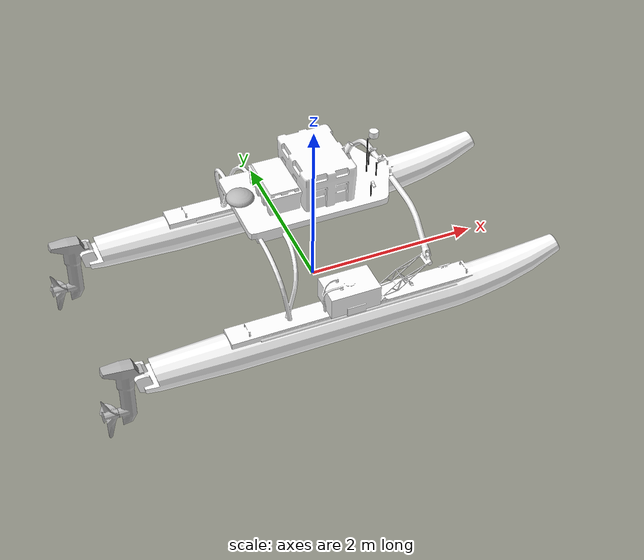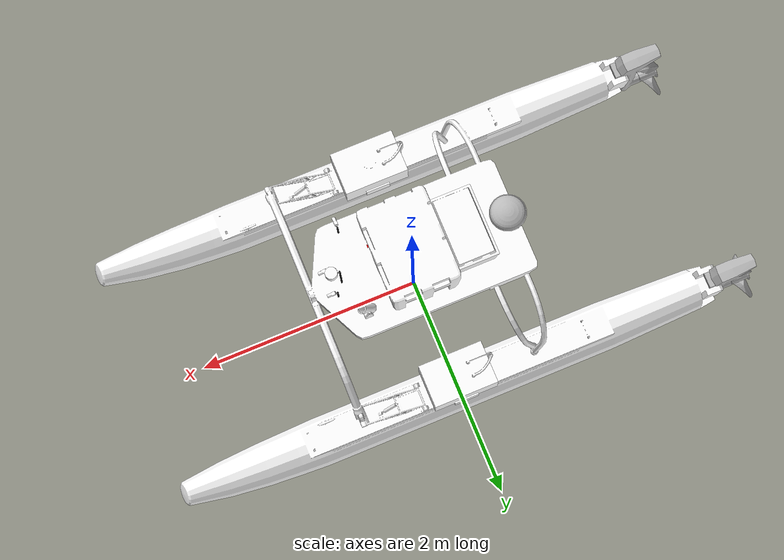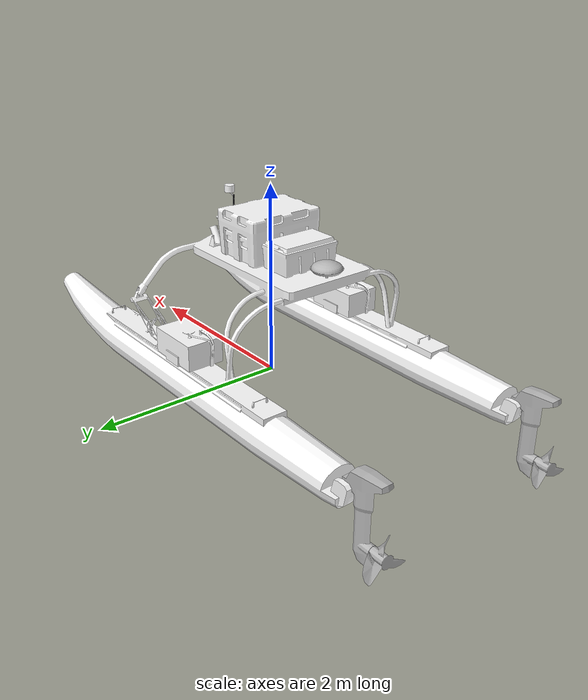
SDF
<sdf version="1.10">
 <model name="WAM-V">
  <link name="wamv/base_link">
   <inertial>
    <pose>-0.0035136061477780219 -0.00096544672795737289 0.25520552255993267 0 0 0</pose>
    <mass>250.18469999999999</mass>
    <inertia>
     <ixx>225.17117280344749</ixx>
     <ixy>0.1216186764289343</ixy>
     <ixz>0.99186607687258233</ixz>
     <iyy>454.14101743117533</iyy>
     <iyz>0.29216251726199038</iyz>
     <izz>499.75243467760379</izz>
    </inertia>
   </inertial>
   <collision name="wamv/base_link_fixed_joint_lump__left_float_collision">
    <pose>-0.40000000000000002 1.03 0.20000000000000001 0 1.5707963267948966 0</pose>
    <geometry><cylinder><length>4</length><radius>0.20000000000000001</radius></cylinder></geometry>
   </collision>
   <collision name="wamv/base_link_fixed_joint_lump__left_mid_float_collision_1">
    <pose>1.8500000000000001 1.03 0.29999999999999999 0 1.3799999999999997 0</pose>
    <geometry><cylinder><length>0.5</length><radius>0.17000000000000001</radius></cylinder></geometry>
   </collision>
   <collision name="wamv/base_link_fixed_joint_lump__left_front_float_collision_2">
    <pose>2.2999999999999998 1.03 0.40000000000000002 0 1.3 0</pose>
    <geometry><cylinder><length>0.45000000000000001</length><radius>0.12</radius></cylinder></geometry>
   </collision>
   <collision name="wamv/base_link_fixed_joint_lump__front_left_beam_lower_collision_3">
    <pose>0.90000000000000002 0.84999999999999998 1 0.78000000000000003 0 0</pose>
    <geometry><cylinder><length>0.5</length><radius>0.040000000000000001</radius></cylinder></geometry>
   </collision>
   <collision name="wamv/base_link_fixed_joint_lump__front_left_beam_upper_collision_4">
    <pose>0.90000000000000002 0.59999999999999998 1.1799999999999999 1.3500000000000001 0 0</pose>
    <geometry>
     <cylinder><length>0.20000000000000001</length><radius>0.040000000000000001</radius></cylinder>
    </geometry>
   </collision>
   <collision name="wamv/base_link_fixed_joint_lump__mid_left_beam_lower_collision_5">
    <pose>-0.65000000000000002 0.98999999999999999 0.69999999999999996 0.099999999999999978 0.25000000000000006 0</pose>
    <geometry>
     <cylinder><length>0.45000000000000001</length><radius>0.029999999999999999</radius></cylinder>
    </geometry>
   </collision>
   <collision name="wamv/base_link_fixed_joint_lump__mid_left_beam_medium_collision_6">
    <pose>-0.56999999999999995 0.87 1.05 0.75000000000000033 0.25000000000000017 0</pose>
    <geometry>
     <cylinder><length>0.32000000000000001</length><radius>0.029999999999999999</radius></cylinder>
    </geometry>
   </collision>
   <collision name="wamv/base_link_fixed_joint_lump__mid_left_beam_upper_collision_7">
    <pose>-0.55000000000000004 0.65000000000000002 1.1699999999999999 1.3500000000000001 0.25000000000000011 0</pose>
    <geometry>
     <cylinder><length>0.29999999999999999</length><radius>0.029999999999999999</radius></cylinder>
    </geometry>
   </collision>
   <collision name="wamv/base_link_fixed_joint_lump__rear_left_beam_lower_collision_8">
    <pose>-0.73999999999999999 1.03 0.69999999999999996 0 -0.14999999999999999 0</pose>
    <geometry>
     <cylinder><length>0.45000000000000001</length><radius>0.029999999999999999</radius></cylinder>
    </geometry>
   </collision>
   <collision name="wamv/base_link_fixed_joint_lump__rear_left_beam_medium_collision_9">
    <pose>-0.79000000000000004 0.91000000000000003 1.05 0.75000000000000022 -0.14999999999999999 -1.4035390109491176e-17</pose>
    <geometry>
     <cylinder><length>0.32000000000000001</length><radius>0.029999999999999999</radius></cylinder>
    </geometry>
   </collision>
   <collision name="wamv/base_link_fixed_joint_lump__rear_left_beam_upper_collision_10">
    <pose>-0.81000000000000005 0.67000000000000004 1.1799999999999999 1.45 -0.14999999999999999 0</pose>
    <geometry>
     <cylinder><length>0.29999999999999999</length><radius>0.029999999999999999</radius></cylinder>
    </geometry>
   </collision>
   <collision name="wamv/base_link_fixed_joint_lump__left_joint_collision_11">
    <pose>0.57999999999999996 1.03 0.59999999999999998 0 -0.59999999999999987 0</pose>
    <geometry><box><size>0.65000000000000002 0.20000000000000001 0.10000000000000001</size></box></geometry>
   </collision>
   <collision name="wamv/base_link_fixed_joint_lump__right_float_collision_12">
    <pose>-0.40000000000000002 -1.03 0.20000000000000001 0 1.5707963267948966 0</pose>
    <geometry><cylinder><length>4</length><radius>0.20000000000000001</radius></cylinder></geometry>
   </collision>
   <collision name="wamv/base_link_fixed_joint_lump__right_mid_float_collision_13">
    <pose>1.8500000000000001 -1.03 0.29999999999999999 0 1.3799999999999997 0</pose>
    <geometry><cylinder><length>0.5</length><radius>0.17000000000000001</radius></cylinder></geometry>
   </collision>
   <collision name="wamv/base_link_fixed_joint_lump__right_front_float_collision_14">
    <pose>2.2999999999999998 -1.03 0.40000000000000002 0 1.3 0</pose>
    <geometry><cylinder><length>0.45000000000000001</length><radius>0.12</radius></cylinder></geometry>
   </collision>
   <collision name="wamv/base_link_fixed_joint_lump__front_right_beam_lower_collision_15">
    <pose>0.90000000000000002 -0.84999999999999998 1 -0.78000000000000003 0 0</pose>
    <geometry><cylinder><length>0.5</length><radius>0.040000000000000001</radius></cylinder></geometry>
   </collision>
   <collision name="wamv/base_link_fixed_joint_lump__front_right_beam_upper_collision_16">
    <pose>0.90000000000000002 -0.59999999999999998 1.1799999999999999 -1.3500000000000001 0 0</pose>
    <geometry>
     <cylinder><length>0.20000000000000001</length><radius>0.040000000000000001</radius></cylinder>
    </geometry>
   </collision>
   <collision name="wamv/base_link_fixed_joint_lump__mid_right_beam_lower_collision_17">
    <pose>-0.65000000000000002 -0.98999999999999999 0.69999999999999996 -0.099999999999999978 0.25000000000000006 0</pose>
    <geometry>
     <cylinder><length>0.45000000000000001</length><radius>0.029999999999999999</radius></cylinder>
    </geometry>
   </collision>
   <collision name="wamv/base_link_fixed_joint_lump__mid_right_beam_medium_collision_18">
    <pose>-0.56999999999999995 -0.87 1.05 -0.75000000000000033 0.25000000000000017 0</pose>
    <geometry>
     <cylinder><length>0.32000000000000001</length><radius>0.029999999999999999</radius></cylinder>
    </geometry>
   </collision>
   <collision name="wamv/base_link_fixed_joint_lump__mid_right_beam_upper_collision_19">
    <pose>-0.55000000000000004 -0.65000000000000002 1.1699999999999999 -1.3500000000000001 0.25000000000000011 0</pose>
    <geometry>
     <cylinder><length>0.29999999999999999</length><radius>0.029999999999999999</radius></cylinder>
    </geometry>
   </collision>
   <collision name="wamv/base_link_fixed_joint_lump__rear_right_beam_lower_collision_20">
    <pose>-0.73999999999999999 -1.03 0.69999999999999996 0 -0.14999999999999999 0</pose>
    <geometry>
     <cylinder><length>0.45000000000000001</length><radius>0.029999999999999999</radius></cylinder>
    </geometry>
   </collision>
   <collision name="wamv/base_link_fixed_joint_lump__rear_right_beam_medium_collision_21">
    <pose>-0.79000000000000004 -0.91000000000000003 1.05 -0.75000000000000022 -0.14999999999999999 1.4035390109491176e-17</pose>
    <geometry>
     <cylinder><length>0.32000000000000001</length><radius>0.029999999999999999</radius></cylinder>
    </geometry>
   </collision>
   <collision name="wamv/base_link_fixed_joint_lump__rear_right_beam_upper_collision_22">
    <pose>-0.81000000000000005 -0.67000000000000004 1.1799999999999999 -1.45 -0.14999999999999999 0</pose>
    <geometry>
     <cylinder><length>0.29999999999999999</length><radius>0.029999999999999999</radius></cylinder>
    </geometry>
   </collision>
   <collision name="wamv/base_link_fixed_joint_lump__right_joint_collision_23">
    <pose>0.57999999999999996 -1.03 0.59999999999999998 0 -0.59999999999999987 0</pose>
    <geometry><box><size>0.65000000000000002 0.20000000000000001 0.10000000000000001</size></box></geometry>
   </collision>
   <collision name="wamv/base_link_fixed_joint_lump__top_base_collision_24">
    <pose>0 0 1.25 0 0 0</pose>
    <geometry><box><size>1.8500000000000001 1 0.10000000000000001</size></box></geometry>
   </collision>
   <collision name="wamv/base_link_fixed_joint_lump__front_left_camera_post_collision_collision_25">
    <pose>0.69999999999999996 0.10000000000000001 1.3847499999999999 0 0 0</pose>
    <geometry><cylinder><length>0.17649999999999999</length><radius>0.0076</radius></cylinder></geometry>
   </collision>
   <collision name="wamv/base_link_fixed_joint_lump__front_left_camera_post_arm_collision_collision_26">
    <pose>0.72999999999999998 0.10000000000000001 1.4730000000000001 -1.2042771838760871 5.5511151231257827e-17 -1.570796326794897</pose>
    <geometry>
     <cylinder><length>0.065000000000000002</length><radius>0.0080000000000000002</radius></cylinder>
    </geometry>
   </collision>
   <collision name="wamv/base_link_fixed_joint_lump__front_left_camera_lens_collision_collision_27">
    <pose>0.76738666487320317 0.10000000000000001 1.495341257188155 3.1415926535897931 1.3089969389957472 3.1415926535897931</pose>
    <geometry>
     <cylinder><length>0.042000000000000003</length><radius>0.014999999999999999</radius></cylinder>
    </geometry>
   </collision>
   <collision name="wamv/base_link_fixed_joint_lump__front_left_camera_box_collision_collision_28">
    <pose>0.73019852056107404 0.10000000000000001 1.5053057904246021 0 0.26179938779914941 0</pose>
    <geometry><box><size>0.035999999999999997 0.029999999999999999 0.029999999999999999</size></box></geometry>
   </collision>
   <collision name="wamv/base_link_fixed_joint_lump__front_right_camera_post_collision_collision_29">
    <pose>0.69999999999999996 -0.10000000000000001 1.3847499999999999 0 0 0</pose>
    <geometry><cylinder><length>0.17649999999999999</length><radius>0.0076</radius></cylinder></geometry>
   </collision>
   <collision name="wamv/base_link_fixed_joint_lump__front_right_camera_post_arm_collision_collision_30">
    <pose>0.72999999999999998 -0.10000000000000001 1.4730000000000001 -1.2042771838760871 5.5511151231257827e-17 -1.570796326794897</pose>
    <geometry>
     <cylinder><length>0.065000000000000002</length><radius>0.0080000000000000002</radius></cylinder>
    </geometry>
   </collision>
   <collision name="wamv/base_link_fixed_joint_lump__front_right_camera_lens_collision_collision_31">
    <pose>0.76738666487320317 -0.10000000000000001 1.495341257188155 3.1415926535897931 1.3089969389957472 3.1415926535897931</pose>
    <geometry>
     <cylinder><length>0.042000000000000003</length><radius>0.014999999999999999</radius></cylinder>
    </geometry>
   </collision>
   <collision name="wamv/base_link_fixed_joint_lump__front_right_camera_box_collision_collision_32">
    <pose>0.73019852056107404 -0.10000000000000001 1.5053057904246021 0 0.26179938779914941 0</pose>
    <geometry><box><size>0.035999999999999997 0.029999999999999999 0.029999999999999999</size></box></geometry>
   </collision>
   <collision name="wamv/base_link_fixed_joint_lump__lidar_wamv_post_collision_collision_33">
    <pose>0.62999999999999989 0 1.52325 0 0 0</pose>
    <geometry><cylinder><length>0.45350000000000013</length><radius>0.0076</radius></cylinder></geometry>
   </collision>
   <collision name="wamv/base_link_fixed_joint_lump__lidar_wamv_post_arm_collision_collision_34">
    <pose>0.65999999999999992 0 1.75 -1.2042771838760871 5.5511151231257827e-17 -1.570796326794897</pose>
    <geometry>
     <cylinder><length>0.065000000000000002</length><radius>0.0080000000000000002</radius></cylinder>
    </geometry>
   </collision>
   <collision name="wamv/base_link_fixed_joint_lump__lidar_wamv_collision_collision_35">
    <pose>0.69999999999999996 0 1.8 0 0 0</pose>
    <geometry><cylinder><length>0.074999999999999997</length><radius>0.055</radius></cylinder></geometry>
   </collision>
   <collision name="wamv/base_link_fixed_joint_lump__middle_right_camera_post_collision_collision_36">
    <pose>0.5 -0.40000000000000002 1.3847499999999999 0 0 -1.5707963267948959</pose>
    <geometry><cylinder><length>0.17649999999999999</length><radius>0.0076</radius></cylinder></geometry>
   </collision>
   <collision name="wamv/base_link_fixed_joint_lump__middle_right_camera_post_arm_collision_collision_37">
    <pose>0.5 -0.42999999999999999 1.4730000000000001 -1.2042771838760871 -5.7225324855899147e-17 -3.1415926535897931</pose>
    <geometry>
     <cylinder><length>0.065000000000000002</length><radius>0.0080000000000000002</radius></cylinder>
    </geometry>
   </collision>
   <collision name="wamv/base_link_fixed_joint_lump__middle_right_camera_lens_collision_collision_38">
    <pose>0.5 -0.46738666487320318 1.495341257188155 3.1415926535897927 1.3089969389957481 1.5707963267948959</pose>
    <geometry>
     <cylinder><length>0.042000000000000003</length><radius>0.014999999999999999</radius></cylinder>
    </geometry>
   </collision>
   <collision name="wamv/base_link_fixed_joint_lump__middle_right_camera_box_collision_collision_39">
    <pose>0.5 -0.4301985205610741 1.5053057904246021 0 0.26179938779914946 -1.570796326794897</pose>
    <geometry><box><size>0.035999999999999997 0.029999999999999999 0.029999999999999999</size></box></geometry>
   </collision>
   <collision name="wamv/base_link_fixed_joint_lump__cpu_case_1_collision_collision_40">
    <pose>0.035000000000000003 0 1.53 0 0 0</pose>
    <geometry><box><size>0.59499999999999997 0.82999999999999996 0.46999999999999997</size></box></geometry>
   </collision>
   <collision name="wamv/base_link_fixed_joint_lump__cpu_case_2_collision_collision_41">
    <pose>-0.45000000000000001 0 1.4379999999999999 0 0 0</pose>
    <geometry><box><size>0.375 0.64000000000000001 0.28000000000000003</size></box></geometry>
   </collision>
   <collision name="wamv/base_link_fixed_joint_lump__left_battery_collision_collision_42">
    <pose>0 1 0.59999999999999998 0 0 0</pose>
    <geometry><box><size>0.59999999999999998 0.40000000000000002 0.31</size></box></geometry>
   </collision>
   <collision name="wamv/base_link_fixed_joint_lump__right_battery_collision_collision_43">
    <pose>0 -1 0.59999999999999998 0 0 0</pose>
    <geometry><box><size>0.59999999999999998 0.40000000000000002 0.31</size></box></geometry>
   </collision>
   <visual name="wamv/base_link_visual">
    <geometry>
     <mesh><scale>1 1 1</scale><uri>model://wamv_description/models/WAM-V-Base/mesh/WAM-V-Base.dae</uri></mesh>
    </geometry>
    <material>
     <diffuse>1 1 1 1</diffuse>
     <specular>1 1 1 1</specular>
     <pbr>
      <metal>
       <albedo_map>model://wamv_description/models/WAM-V-Base/mesh/WAM-V_Albedo.png</albedo_map>
       <normal_map>model://wamv_description/models/WAM-V-Base/mesh/WAM-V_Normal.png</normal_map>
       <roughness_map>model://wamv_description/models/WAM-V-Base/mesh/WAM-V_Roughness.png</roughness_map>
       <metalness_map>model://wamv_description/models/WAM-V-Base/mesh/WAM-V_Metalness.png</metalness_map>
      </metal>
     </pbr>
    </material>
   </visual>
   <visual name="wamv/base_link_fixed_joint_lump__wamv/front_left_camera_post_link_visual_1">
    <pose>0.69999999999999996 0.10000000000000001 1.3847499999999999 0 0 0</pose>
    <geometry><cylinder><length>0.17649999999999999</length><radius>0.0076</radius></cylinder></geometry>
    <material><diffuse>0 0 0 1</diffuse><ambient>0 0 0 1</ambient></material>
   </visual>
   <visual name="wamv/base_link_fixed_joint_lump__front_left_camera_post_arm_visual_visual_2">
    <pose>0.69199999999999995 0.10000000000000001 1.47 -1.0471975511965981 5.5511151231257827e-17 -1.570796326794897</pose>
    <geometry>
     <mesh><scale>1 1 1</scale><uri>model://vrx_gazebo/models/sensor_post/mesh/sensor_post_arm.dae</uri></mesh>
    </geometry>
   </visual>
   <visual name="wamv/base_link_fixed_joint_lump__wamv/front_left_camera_link_visual_3">
    <pose>0.71812444773246065 0.10000000000000001 1.5085410284883829 0.26179938779914941 2.7755575615628914e-17 1.570796326794897</pose>
    <geometry>
     <mesh><scale>1 1 1</scale><uri>model://vrx_gazebo/models/mono_camera/mesh/mono_camera.dae</uri></mesh>
    </geometry>
    <material>
     <diffuse>1 1 1 1</diffuse>
     <specular>1 1 1 1</specular>
     <pbr>
      <metal>
       <albedo_map>model://vrx_gazebo/models/mono_camera/mesh/mono_camera_Albedo.png</albedo_map>
       <normal_map>model://vrx_gazebo/models/mono_camera/mesh/mono_camera_Normal.png</normal_map>
       <roughness_map>model://vrx_gazebo/models/mono_camera/mesh/mono_camera_Roughness.png</roughness_map>
       <metalness_map>model://vrx_gazebo/models/mono_camera/mesh/mono_camera_Metalness.png</metalness_map>
      </metal>
     </pbr>
    </material>
   </visual>
   <visual name="wamv/base_link_fixed_joint_lump__wamv/front_right_camera_post_link_visual_4">
    <pose>0.69999999999999996 -0.10000000000000001 1.3847499999999999 0 0 0</pose>
    <geometry><cylinder><length>0.17649999999999999</length><radius>0.0076</radius></cylinder></geometry>
    <material><diffuse>0 0 0 1</diffuse><ambient>0 0 0 1</ambient></material>
   </visual>
   <visual name="wamv/base_link_fixed_joint_lump__front_right_camera_post_arm_visual_visual_5">
    <pose>0.69199999999999995 -0.10000000000000001 1.47 -1.0471975511965981 5.5511151231257827e-17 -1.570796326794897</pose>
    <geometry>
     <mesh><scale>1 1 1</scale><uri>model://vrx_gazebo/models/sensor_post/mesh/sensor_post_arm.dae</uri></mesh>
    </geometry>
   </visual>
   <visual name="wamv/base_link_fixed_joint_lump__wamv/front_right_camera_link_visual_6">
    <pose>0.71812444773246065 -0.10000000000000001 1.5085410284883829 0.26179938779914941 2.7755575615628914e-17 1.570796326794897</pose>
    <geometry>
     <mesh><scale>1 1 1</scale><uri>model://vrx_gazebo/models/mono_camera/mesh/mono_camera.dae</uri></mesh>
    </geometry>
    <material>
     <diffuse>1 1 1 1</diffuse>
     <specular>1 1 1 1</specular>
     <pbr>
      <metal>
       <albedo_map>model://vrx_gazebo/models/mono_camera/mesh/mono_camera_Albedo.png</albedo_map>
       <normal_map>model://vrx_gazebo/models/mono_camera/mesh/mono_camera_Normal.png</normal_map>
       <roughness_map>model://vrx_gazebo/models/mono_camera/mesh/mono_camera_Roughness.png</roughness_map>
       <metalness_map>model://vrx_gazebo/models/mono_camera/mesh/mono_camera_Metalness.png</metalness_map>
      </metal>
     </pbr>
    </material>
   </visual>
   <visual name="wamv/base_link_fixed_joint_lump__wamv/lidar_wamv_post_link_visual_7">
    <pose>0.62999999999999989 0 1.52325 0 0 0</pose>
    <geometry><cylinder><length>0.45350000000000013</length><radius>0.0076</radius></cylinder></geometry>
    <material><diffuse>0 0 0 1</diffuse><ambient>0 0 0 1</ambient></material>
   </visual>
   <visual name="wamv/base_link_fixed_joint_lump__lidar_wamv_post_arm_visual_visual_8">
    <pose>0.62199999999999989 0 1.7470000000000001 -1.0471975511965981 5.5511151231257827e-17 -1.570796326794897</pose>
    <geometry>
     <mesh><scale>1 1 1</scale><uri>model://vrx_gazebo/models/sensor_post/mesh/sensor_post_arm.dae</uri></mesh>
    </geometry>
   </visual>
   <visual name="wamv/base_link_fixed_joint_lump__wamv/lidar_wamv_link_visual_9">
    <pose>0.69999999999999996 0 1.7649999999999999 0 0 0</pose>
    <geometry>
     <mesh><scale>1 1 1</scale><uri>model://vrx_gazebo/models/3d_lidar/mesh/3d_lidar.dae</uri></mesh>
    </geometry>
    <material>
     <diffuse>1 1 1 1</diffuse>
     <specular>1 1 1 1</specular>
     <pbr>
      <metal>
       <albedo_map>model://vrx_gazebo/models/3d_lidar/mesh/3d_Lidar_Albedo.png</albedo_map>
       <normal_map>model://vrx_gazebo/models/3d_lidar/mesh/3d_Lidar_Normal.png</normal_map>
       <roughness_map>model://vrx_gazebo/models/3d_lidar/mesh/3d_Lidar_Roughness.png</roughness_map>
       <metalness_map>model://vrx_gazebo/models/3d_lidar/mesh/3d_Lidar_Metalness.png</metalness_map>
      </metal>
     </pbr>
    </material>
   </visual>
   <visual name="wamv/base_link_fixed_joint_lump__wamv/middle_right_camera_post_link_visual_10">
    <pose>0.5 -0.40000000000000002 1.3847499999999999 0 0 -1.5707963267948959</pose>
    <geometry><cylinder><length>0.17649999999999999</length><radius>0.0076</radius></cylinder></geometry>
    <material><diffuse>0 0 0 1</diffuse><ambient>0 0 0 1</ambient></material>
   </visual>
   <visual name="wamv/base_link_fixed_joint_lump__middle_right_camera_post_arm_visual_visual_11">
    <pose>0.5 -0.39200000000000002 1.47 -1.0471975511965981 2.2311252215006139e-17 -3.1415926535897931</pose>
    <geometry>
     <mesh><scale>1 1 1</scale><uri>model://vrx_gazebo/models/sensor_post/mesh/sensor_post_arm.dae</uri></mesh>
    </geometry>
   </visual>
   <visual name="wamv/base_link_fixed_joint_lump__wamv/middle_right_camera_link_visual_12">
    <pose>0.5 -0.41812444773246082 1.5085410284883829 0.26179938779914952 5.5036245637175027e-17 7.2456591959675132e-18</pose>
    <geometry>
     <mesh><scale>1 1 1</scale><uri>model://vrx_gazebo/models/mono_camera/mesh/mono_camera.dae</uri></mesh>
    </geometry>
    <material>
     <diffuse>1 1 1 1</diffuse>
     <specular>1 1 1 1</specular>
     <pbr>
      <metal>
       <albedo_map>model://vrx_gazebo/models/mono_camera/mesh/mono_camera_Albedo.png</albedo_map>
       <normal_map>model://vrx_gazebo/models/mono_camera/mesh/mono_camera_Normal.png</normal_map>
       <roughness_map>model://vrx_gazebo/models/mono_camera/mesh/mono_camera_Roughness.png</roughness_map>
       <metalness_map>model://vrx_gazebo/models/mono_camera/mesh/mono_camera_Metalness.png</metalness_map>
      </metal>
     </pbr>
    </material>
   </visual>
   <visual name="wamv/base_link_fixed_joint_lump__wamv/cpu_cases_link_visual_13">
    <pose>-0.076999999999999999 0 0 0 0 0</pose>
    <geometry>
     <mesh><scale>1 1 1</scale><uri>model://vrx_gazebo/models/cpu_cases/mesh/cpu_cases.dae</uri></mesh>
    </geometry>
    <material>
     <diffuse>1 1 1 1</diffuse>
     <specular>1 1 1 1</specular>
     <pbr>
      <metal>
       <albedo_map>model://vrx_gazebo/models/cpu_cases/mesh/cpu_cases_Albedo.png</albedo_map>
       <normal_map>model://vrx_gazebo/models/cpu_cases/mesh/cpu_cases_Normal.png</normal_map>
       <roughness_map>model://vrx_gazebo/models/cpu_cases/mesh/cpu_cases_Roughness.png</roughness_map>
       <metalness_map>model://vrx_gazebo/models/cpu_cases/mesh/cpu_cases_Metalness.png</metalness_map>
      </metal>
     </pbr>
    </material>
   </visual>
   <visual name="wamv/base_link_fixed_joint_lump__wamv/left_battery_link_visual_14">
    <pose>0 -0.03000000000000003 0 0 0 0</pose>
    <geometry>
     <mesh><scale>1 1 1</scale><uri>model://vrx_gazebo/models/battery/mesh/battery.dae</uri></mesh>
    </geometry>
    <material>
     <diffuse>1 1 1 1</diffuse>
     <specular>1 1 1 1</specular>
     <pbr>
      <metal>
       <albedo_map>model://vrx_gazebo/models/battery/mesh/battery_Albedo.png</albedo_map>
       <normal_map>model://vrx_gazebo/models/battery/mesh/battery_Normal.png</normal_map>
       <roughness_map>model://vrx_gazebo/models/battery/mesh/battery_Roughness.png</roughness_map>
       <metalness_map>model://vrx_gazebo/models/battery/mesh/battery_Metalness.png</metalness_map>
      </metal>
     </pbr>
    </material>
   </visual>
   <visual name="wamv/base_link_fixed_joint_lump__wamv/right_battery_link_visual_15">
    <pose>0 -2.0299999999999998 0 0 0 0</pose>
    <geometry>
     <mesh><scale>1 1 1</scale><uri>model://vrx_gazebo/models/battery/mesh/battery.dae</uri></mesh>
    </geometry>
    <material>
     <diffuse>1 1 1 1</diffuse>
     <specular>1 1 1 1</specular>
     <pbr>
      <metal>
       <albedo_map>model://vrx_gazebo/models/battery/mesh/battery_Albedo.png</albedo_map>
       <normal_map>model://vrx_gazebo/models/battery/mesh/battery_Normal.png</normal_map>
       <roughness_map>model://vrx_gazebo/models/battery/mesh/battery_Roughness.png</roughness_map>
       <metalness_map>model://vrx_gazebo/models/battery/mesh/battery_Metalness.png</metalness_map>
      </metal>
     </pbr>
    </material>
   </visual>
   <sensor name="contact_sensor" type="contact">
    <contact>
     <collision>wamv/base_link_fixed_joint_lump__top_base_collision_24</collision>
     <collision>wamv/base_link_fixed_joint_lump__left_float_collision</collision>
     <collision>wamv/base_link_fixed_joint_lump__left_mid_float_collision_1</collision>
     <collision>wamv/base_link_fixed_joint_lump__left_front_float_collision_2</collision>
     <collision>wamv/base_link_fixed_joint_lump__right_float_collision_12</collision>
     <collision>wamv/base_link_fixed_joint_lump__right_mid_float_collision_13</collision>
     <collision>wamv/base_link_fixed_joint_lump__right_front_float_collision_14</collision>
     <topic>/vrx/contacts</topic>
    </contact>
    <always_on>true</always_on>
    <update_rate>5</update_rate>
   </sensor>
   <sensor name="front_left_camera_sensor" type="camera">
    <update_rate>30</update_rate>
    <camera name="front_left_camera_camera">
     <horizontal_fov>1.3962634</horizontal_fov>
     <image><width>1280</width><height>720</height><format>R8G8B8</format></image>
     <clip><near>0.050000000000000003</near><far>400</far></clip>
     <noise><type>gaussian</type><mean>0</mean><stddev>0.0070000000000000001</stddev></noise>
    </camera>
    <pose>0.75 0.10000000000000001 1.5 0 0.261799 0</pose>
   </sensor>
   <sensor name="front_right_camera_sensor" type="camera">
    <update_rate>30</update_rate>
    <camera name="front_right_camera_camera">
     <horizontal_fov>1.3962634</horizontal_fov>
     <image><width>1280</width><height>720</height><format>R8G8B8</format></image>
     <clip><near>0.050000000000000003</near><far>400</far></clip>
     <noise><type>gaussian</type><mean>0</mean><stddev>0.0070000000000000001</stddev></noise>
    </camera>
    <pose>0.75 -0.10000000000000001 1.5 0 0.261799 0</pose>
   </sensor>
   <sensor name="lidar_wamv_sensor" type="gpu_ray">
    <update_rate>10</update_rate>
    <ray>
     <scan>
      <horizontal>
       <samples>1875</samples>
       <resolution>1</resolution>
       <min_angle>-3.1415926535897931</min_angle>
       <max_angle>3.1415926535897931</max_angle>
      </horizontal>
      <vertical>
       <samples>16</samples>
       <resolution>1</resolution>
       <min_angle>-0.26179938779914941</min_angle>
       <max_angle>0.26179938779914941</max_angle>
      </vertical>
     </scan>
     <range><min>0.10000000000000001</min><max>130</max></range>
     <noise><type>gaussian</type><mean>0</mean><stddev>0.01</stddev></noise>
    </ray>
    <pose>0.69999999999999996 0 1.8 0 0 0</pose>
   </sensor>
   <sensor name="middle_right_camera_sensor" type="camera">
    <update_rate>30</update_rate>
    <camera name="middle_right_camera_camera">
     <horizontal_fov>1.3962634</horizontal_fov>
     <image><width>1280</width><height>720</height><format>R8G8B8</format></image>
     <clip><near>0.050000000000000003</near><far>400</far></clip>
     <noise><type>gaussian</type><mean>0</mean><stddev>0.0070000000000000001</stddev></noise>
    </camera>
    <pose>0.5 -0.45000000000000001 1.5 -2.873468332259928e-17 0.261799 -1.5708</pose>
   </sensor>
  </link>
  <joint name="wamv/ball_shooter_base_joint" type="revolute">
   <pose relative_to="wamv/base_link">0.54000000000000004 0.29999999999999999 1.296 0 0 0</pose>
   <parent>wamv/base_link</parent>
   <child>wamv/ball_shooter_base_link</child>
   <axis>
    <xyz>0 0 1</xyz>
    <limit><lower>0</lower><upper>0</upper><effort>1000</effort><velocity>0</velocity></limit>
    <dynamics><spring_reference>0</spring_reference><spring_stiffness>0</spring_stiffness></dynamics>
   </axis>
  </joint>
  <link name="wamv/ball_shooter_base_link">
   <pose relative_to="wamv/ball_shooter_base_joint">0 0 0 0 0 0</pose>
   <inertial>
    <pose>-0.02 0 0.050000000000000003 0 0 0</pose>
    <mass>0.5</mass>
    <inertia>
     <ixx>0.00083000000000000001</ixx>
     <ixy>0</ixy>
     <ixz>0</ixz>
     <iyy>0.00052083000000000001</iyy>
     <iyz>0</iyz>
     <izz>0.00052083000000000001</izz>
    </inertia>
   </inertial>
   <visual name="wamv/ball_shooter_base_link_visual">
    <geometry>
     <mesh>
      <scale>1 1 1</scale>
      <uri>model://vrx_gazebo/models/ball_shooter/meshes/ball_shooter_base.dae</uri>
     </mesh>
    </geometry>
    <material>
     <diffuse>1 1 1 1</diffuse>
     <specular>1 1 1 1</specular>
     <pbr>
      <metal>
       <albedo_map>model://vrx_gazebo/models/ball_shooter/materials/Textures/Launcher_Albedo.png</albedo_map>
       <normal_map>model://vrx_gazebo/models/ball_shooter/materials/Textures/Launcher_Normal.png</normal_map>
       <roughness_map>model://vrx_gazebo/models/ball_shooter/materials/Textures/Launcher_Roughness.png</roughness_map>
       <metalness_map>model://vrx_gazebo/models/ball_shooter/materials/Textures/Launcher_Metalness.png</metalness_map>
      </metal>
     </pbr>
    </material>
   </visual>
  </link>
  <joint name="wamv/ball_shooter_launcher_joint" type="revolute">
   <pose relative_to="wamv/ball_shooter_base_link">-0.020400000000000001 0 0.107877 0 -1.04 0</pose>
   <parent>wamv/ball_shooter_base_link</parent>
   <child>wamv/ball_shooter_launcher_link</child>
   <axis>
    <xyz>0 0 1</xyz>
    <limit><lower>0</lower><upper>0</upper><effort>1000</effort><velocity>0</velocity></limit>
    <dynamics><spring_reference>0</spring_reference><spring_stiffness>0</spring_stiffness></dynamics>
   </axis>
  </joint>
  <link name="wamv/ball_shooter_launcher_link">
   <pose relative_to="wamv/ball_shooter_launcher_joint">0 0 0 0 0 0</pose>
   <inertial>
    <pose>0 0 0 3.1415926535897931 -1.5707926536359933 3.1415926535897931</pose>
    <mass>0.5</mass>
    <inertia>
     <ixx>0.0017791669999999999</ixx>
     <ixy>0</ixy>
     <ixz>0</ixz>
     <iyy>0.0017791669999999999</iyy>
     <iyz>0</iyz>
     <izz>0.00022499999999999999</izz>
    </inertia>
   </inertial>
   <collision name="wamv/ball_shooter_launcher_link_fixed_joint_lump__ball_shooter_collision_collision">
    <pose>0 0 0 0 0.261799 0</pose>
    <geometry><box><size>0.29999999999999999 0.29999999999999999 0.20000000000000001</size></box></geometry>
   </collision>
   <visual name="wamv/ball_shooter_launcher_link_visual">
    <pose>0 0 0 0 0.261799 0</pose>
    <geometry>
     <mesh>
      <scale>1 1 1</scale>
      <uri>model://vrx_gazebo/models/ball_shooter/meshes/ball_shooter_launcher.dae</uri>
     </mesh>
    </geometry>
    <material>
     <diffuse>1 1 1 1</diffuse>
     <specular>1 1 1 1</specular>
     <pbr>
      <metal>
       <albedo_map>model://vrx_gazebo/models/ball_shooter/materials/Textures/Launcher_Albedo.png</albedo_map>
       <normal_map>model://vrx_gazebo/models/ball_shooter/materials/Textures/Launcher_Normal.png</normal_map>
       <roughness_map>model://vrx_gazebo/models/ball_shooter/materials/Textures/Launcher_Roughness.png</roughness_map>
       <metalness_map>model://vrx_gazebo/models/ball_shooter/materials/Textures/Launcher_Metalness.png</metalness_map>
      </metal>
     </pbr>
    </material>
   </visual>
  </link>
  <joint name="wamv/gps_wamv_joint" type="revolute">
   <pose relative_to="wamv/base_link">-0.84999999999999998 0 1.3 0 0 0</pose>
   <parent>wamv/base_link</parent>
   <child>wamv/gps_wamv_link</child>
   <axis>
    <xyz>0 0 1</xyz>
    <limit><lower>0</lower><upper>0</upper><effort>1000</effort><velocity>0</velocity></limit>
    <dynamics><spring_reference>0</spring_reference><spring_stiffness>0</spring_stiffness></dynamics>
   </axis>
  </joint>
  <link name="wamv/gps_wamv_link">
   <pose relative_to="wamv/gps_wamv_joint">0 0 0 0 0 0</pose>
   <inertial>
    <mass>1</mass>
    <inertia>
     <ixx>0.0064580000000000002</ixx>
     <ixy>0</ixy>
     <ixz>0</ixz>
     <iyy>0.0064580000000000002</iyy>
     <iyz>0</iyz>
     <izz>0.01125</izz>
    </inertia>
   </inertial>
   <collision name="wamv/gps_wamv_link_fixed_joint_lump__gps_wamv_collision_base_collision">
    <pose>0 0 0.025000000000000001 0 0 0</pose>
    <geometry>
     <cylinder><length>0.050000000000000003</length><radius>0.014999999999999999</radius></cylinder>
    </geometry>
   </collision>
   <collision name="wamv/gps_wamv_link_fixed_joint_lump__gps_wamv_collision_antenna_collision_1">
    <pose>0 0 0.11 0 0 0</pose>
    <geometry>
     <cylinder><length>0.10000000000000001</length><radius>0.14999999999999999</radius></cylinder>
    </geometry>
   </collision>
   <visual name="wamv/gps_wamv_link_fixed_joint_lump__gps_wamv_visual_visual">
    <geometry><mesh><scale>1 1 1</scale><uri>model://wamv_gazebo/models/gps/mesh/gps.dae</uri></mesh></geometry>
   </visual>
   <sensor name="navsat" type="navsat"><always_on>true</always_on><update_rate>20</update_rate></sensor>
  </link>
  <joint name="wamv/imu_wamv_joint" type="revolute">
   <pose relative_to="wamv/base_link">0.29999999999999999 -0.20000000000000001 1.3 0 0 0</pose>
   <parent>wamv/base_link</parent>
   <child>wamv/imu_wamv_link</child>
   <axis>
    <xyz>0 0 1</xyz>
    <limit><lower>0</lower><upper>0</upper><effort>1000</effort><velocity>0</velocity></limit>
    <dynamics><spring_reference>0</spring_reference><spring_stiffness>0</spring_stiffness></dynamics>
   </axis>
  </joint>
  <link name="wamv/imu_wamv_link">
   <pose relative_to="wamv/imu_wamv_joint">0 0 0 0 0 0</pose>
   <inertial>
    <mass>0.10000000000000001</mass>
    <inertia>
     <ixx>5.4199999999999998e-06</ixx>
     <ixy>0</ixy>
     <ixz>0</ixz>
     <iyy>2.1039999999999998e-05</iyy>
     <iyz>0</iyz>
     <izz>2.6040000000000001e-05</izz>
    </inertia>
   </inertial>
   <collision name="wamv/imu_wamv_link_fixed_joint_lump__imu_wamv_collision_collision">
    <geometry><box><size>0.050000000000000003 0.025000000000000001 0.0050000000000000001</size></box></geometry>
   </collision>
   <visual name="wamv/imu_wamv_link_fixed_joint_lump__imu_wamv_visual_visual">
    <geometry><box><size>0.050000000000000003 0.025000000000000001 0.0050000000000000001</size></box></geometry>
    <material><diffuse>1 0 0 1</diffuse><ambient>1 0 0 1</ambient></material>
   </visual>
   <sensor name="imu_wamv_sensor" type="imu">
    <update_rate>100</update_rate>
    <imu>
     <angular_velocity>
      <x>
       <noise type="gaussian">
        <mean>0</mean>
        <stddev>0.0089999999999999993</stddev>
        <bias_mean>0.00075000000000000002</bias_mean>
        <bias_stddev>0.0050000000000000001</bias_stddev>
        <dynamic_bias_stddev>2.0000000000000002e-05</dynamic_bias_stddev>
        <dynamic_bias_correlation_time>400</dynamic_bias_correlation_time>
        <precision>0.00025000000000000001</precision>
       </noise>
      </x>
      <y>
       <noise type="gaussian">
        <mean>0</mean>
        <stddev>0.0089999999999999993</stddev>
        <bias_mean>0.00075000000000000002</bias_mean>
        <bias_stddev>0.0050000000000000001</bias_stddev>
        <dynamic_bias_stddev>2.0000000000000002e-05</dynamic_bias_stddev>
        <dynamic_bias_correlation_time>400</dynamic_bias_correlation_time>
        <precision>0.00025000000000000001</precision>
       </noise>
      </y>
      <z>
       <noise type="gaussian">
        <mean>0</mean>
        <stddev>0.0089999999999999993</stddev>
        <bias_mean>0.00075000000000000002</bias_mean>
        <bias_stddev>0.0050000000000000001</bias_stddev>
        <dynamic_bias_stddev>2.0000000000000002e-05</dynamic_bias_stddev>
        <dynamic_bias_correlation_time>400</dynamic_bias_correlation_time>
        <precision>0.00025000000000000001</precision>
       </noise>
      </z>
     </angular_velocity>
     <linear_acceleration>
      <x>
       <noise type="gaussian">
        <mean>0</mean>
        <stddev>0.021000000000000001</stddev>
        <bias_mean>0.050000000000000003</bias_mean>
        <bias_stddev>0.0074999999999999997</bias_stddev>
        <dynamic_bias_stddev>0.00037500000000000001</dynamic_bias_stddev>
        <dynamic_bias_correlation_time>175</dynamic_bias_correlation_time>
        <precision>0.0050000000000000001</precision>
       </noise>
      </x>
      <y>
       <noise type="gaussian">
        <mean>0</mean>
        <stddev>0.021000000000000001</stddev>
        <bias_mean>0.050000000000000003</bias_mean>
        <bias_stddev>0.0074999999999999997</bias_stddev>
        <dynamic_bias_stddev>0.00037500000000000001</dynamic_bias_stddev>
        <dynamic_bias_correlation_time>175</dynamic_bias_correlation_time>
        <precision>0.0050000000000000001</precision>
       </noise>
      </y>
      <z>
       <noise type="gaussian">
        <mean>0</mean>
        <stddev>0.021000000000000001</stddev>
        <bias_mean>0.050000000000000003</bias_mean>
        <bias_stddev>0.0074999999999999997</bias_stddev>
        <dynamic_bias_stddev>0.00037500000000000001</dynamic_bias_stddev>
        <dynamic_bias_correlation_time>175</dynamic_bias_correlation_time>
        <precision>0.0050000000000000001</precision>
       </noise>
      </z>
     </linear_acceleration>
     <orientation_reference_frame><localization>ENU</localization></orientation_reference_frame>
    </imu>
   </sensor>
  </link>
  <joint name="wamv/left_chassis_engine_joint" type="revolute">
   <pose relative_to="wamv/base_link">-2.3737759999999999 1.0271349999999999 0.31823699999999999 0 0 0</pose>
   <parent>wamv/base_link</parent>
   <child>wamv/left_engine_link</child>
   <axis>
    <xyz>0 0 1</xyz>
    <limit>
     <lower>-3.1415926535897931</lower>
     <upper>3.1415926535897931</upper>
     <effort>10</effort>
     <velocity>10</velocity>
    </limit>
    <dynamics><spring_reference>0</spring_reference><spring_stiffness>0</spring_stiffness></dynamics>
   </axis>
  </joint>
  <link name="wamv/left_engine_link">
   <pose relative_to="wamv/left_chassis_engine_joint">0 0 0 0 0 0</pose>
   <inertial>
    <mass>15</mass>
    <inertia>
     <ixx>0.88924499999999995</ixx>
     <ixy>0</ixy>
     <ixz>0</ixz>
     <iyy>0.91112499999999996</iyy>
     <iyz>0</iyz>
     <izz>0.078125</izz>
    </inertia>
   </inertial>
   <collision name="wamv/left_engine_link_fixed_joint_lump__left_engine_vertical_axis_collision_collision">
    <pose>-0.16 0 -0.23999999999999999 0 0 0</pose>
    <geometry><box><size>0.20000000000000001 0.14999999999999999 0.82999999999999996</size></box></geometry>
   </collision>
   <collision name="wamv/left_engine_link_fixed_joint_lump__left_engine_rear_end_collision_collision_1">
    <pose>-0.34000000000000002 0 0.12 0 0 0</pose>
    <geometry><box><size>0.12 0.14999999999999999 0.12</size></box></geometry>
   </collision>
   <visual name="wamv/left_engine_link_visual">
    <geometry>
     <mesh><scale>1 1 1</scale><uri>model://wamv_description/models/engine/mesh/engine.dae</uri></mesh>
    </geometry>
   </visual>
  </link>
  <joint name="wamv/left_engine_propeller_joint" type="revolute">
   <pose relative_to="wamv/left_engine_link">-0.27815600000000001 0 -0.50937100000000002 0 0 0</pose>
   <parent>wamv/left_engine_link</parent>
   <child>wamv/left_propeller_link</child>
   <axis>
    <xyz>1 0 0</xyz>
    <limit><effort>100</effort><velocity>100</velocity><lower>-inf</lower><upper>inf</upper></limit>
    <dynamics>
     <damping>0.050000000000000003</damping>
     <friction>0.050000000000000003</friction>
     <spring_reference>0</spring_reference>
     <spring_stiffness>0</spring_stiffness>
    </dynamics>
   </axis>
  </joint>
  <link name="wamv/left_propeller_link">
   <pose relative_to="wamv/left_engine_propeller_joint">0 0 0 0 0 0</pose>
   <inertial>
    <mass>0.5</mass>
    <inertia>
     <ixx>0.0085450000000000005</ixx>
     <ixy>0</ixy>
     <ixz>0</ixz>
     <iyy>0.0085450000000000005</iyy>
     <iyz>0</iyz>
     <izz>0.0144</izz>
    </inertia>
   </inertial>
   <collision name="wamv/left_propeller_link_fixed_joint_lump__left_propeller_collision_collision">
    <pose>-0.080000000000000002 0 0 0 1.5707963267948966 0</pose>
    <geometry>
     <cylinder><length>0.17999999999999999</length><radius>0.23999999999999999</radius></cylinder>
    </geometry>
   </collision>
   <visual name="wamv/left_propeller_link_visual">
    <geometry>
     <mesh><scale>1 1 1</scale><uri>model://wamv_description/models/propeller/mesh/propeller.dae</uri></mesh>
    </geometry>
   </visual>
  </link>
  <joint name="wamv/receiver_pinger_joint" type="revolute">
   <pose relative_to="wamv/base_link">0 0 0 0 0 0</pose>
   <parent>wamv/base_link</parent>
   <child>wamv/receiver</child>
   <axis>
    <xyz>0 0 1</xyz>
    <limit><lower>0</lower><upper>0</upper><effort>1000</effort><velocity>0</velocity></limit>
    <dynamics><spring_reference>0</spring_reference><spring_stiffness>0</spring_stiffness></dynamics>
   </axis>
  </joint>
  <link name="wamv/receiver">
   <pose relative_to="wamv/receiver_pinger_joint">0 0 0 0 0 0</pose>
   <inertial>
    <mass>0.10000000000000001</mass>
    <inertia>
     <ixx>5.4199999999999998e-06</ixx>
     <ixy>0</ixy>
     <ixz>0</ixz>
     <iyy>2.1039999999999998e-05</iyy>
     <iyz>0</iyz>
     <izz>2.6040000000000001e-05</izz>
    </inertia>
   </inertial>
   <visual name="wamv/receiver_visual"><geometry><sphere><radius>0.01</radius></sphere></geometry></visual>
  </link>
  <joint name="wamv/right_chassis_engine_joint" type="revolute">
   <pose relative_to="wamv/base_link">-2.3737759999999999 -1.0271349999999999 0.31823699999999999 0 0 0</pose>
   <parent>wamv/base_link</parent>
   <child>wamv/right_engine_link</child>
   <axis>
    <xyz>0 0 1</xyz>
    <limit>
     <lower>-3.1415926535897931</lower>
     <upper>3.1415926535897931</upper>
     <effort>10</effort>
     <velocity>10</velocity>
    </limit>
    <dynamics><spring_reference>0</spring_reference><spring_stiffness>0</spring_stiffness></dynamics>
   </axis>
  </joint>
  <link name="wamv/right_engine_link">
   <pose relative_to="wamv/right_chassis_engine_joint">0 0 0 0 0 0</pose>
   <inertial>
    <mass>15</mass>
    <inertia>
     <ixx>0.88924499999999995</ixx>
     <ixy>0</ixy>
     <ixz>0</ixz>
     <iyy>0.91112499999999996</iyy>
     <iyz>0</iyz>
     <izz>0.078125</izz>
    </inertia>
   </inertial>
   <collision name="wamv/right_engine_link_fixed_joint_lump__right_engine_vertical_axis_collision_collision">
    <pose>-0.16 0 -0.23999999999999999 0 0 0</pose>
    <geometry><box><size>0.20000000000000001 0.14999999999999999 0.82999999999999996</size></box></geometry>
   </collision>
   <collision name="wamv/right_engine_link_fixed_joint_lump__right_engine_rear_end_collision_collision_1">
    <pose>-0.34000000000000002 0 0.12 0 0 0</pose>
    <geometry><box><size>0.12 0.14999999999999999 0.12</size></box></geometry>
   </collision>
   <visual name="wamv/right_engine_link_visual">
    <geometry>
     <mesh><scale>1 1 1</scale><uri>model://wamv_description/models/engine/mesh/engine.dae</uri></mesh>
    </geometry>
   </visual>
  </link>
  <joint name="wamv/right_engine_propeller_joint" type="revolute">
   <pose relative_to="wamv/right_engine_link">-0.27815600000000001 0 -0.50937100000000002 0 0 0</pose>
   <parent>wamv/right_engine_link</parent>
   <child>wamv/right_propeller_link</child>
   <axis>
    <xyz>1 0 0</xyz>
    <limit><effort>100</effort><velocity>100</velocity><lower>-inf</lower><upper>inf</upper></limit>
    <dynamics>
     <damping>0.050000000000000003</damping>
     <friction>0.050000000000000003</friction>
     <spring_reference>0</spring_reference>
     <spring_stiffness>0</spring_stiffness>
    </dynamics>
   </axis>
  </joint>
  <link name="wamv/right_propeller_link">
   <pose relative_to="wamv/right_engine_propeller_joint">0 0 0 0 0 0</pose>
   <inertial>
    <mass>0.5</mass>
    <inertia>
     <ixx>0.0085450000000000005</ixx>
     <ixy>0</ixy>
     <ixz>0</ixz>
     <iyy>0.0085450000000000005</iyy>
     <iyz>0</iyz>
     <izz>0.0144</izz>
    </inertia>
   </inertial>
   <collision name="wamv/right_propeller_link_fixed_joint_lump__right_propeller_collision_collision">
    <pose>-0.080000000000000002 0 0 0 1.5707963267948966 0</pose>
    <geometry>
     <cylinder><length>0.17999999999999999</length><radius>0.23999999999999999</radius></cylinder>
    </geometry>
   </collision>
   <visual name="wamv/right_propeller_link_visual">
    <geometry>
     <mesh><scale>1 1 1</scale><uri>model://wamv_description/models/propeller/mesh/propeller.dae</uri></mesh>
    </geometry>
   </visual>
  </link>
  <enable_wind>true</enable_wind>
  <plugin name="gz::sim::systems::Thruster" filename="gz-sim-thruster-system">
   <joint_name>wamv/left_engine_propeller_joint</joint_name>
   <thrust_coefficient>0.004422</thrust_coefficient>
   <fluid_density>1000</fluid_density>
   <propeller_diameter>0.2</propeller_diameter>
   <velocity_control>true</velocity_control>
   <max_thrust_cmd>2353.53383667818</max_thrust_cmd>
   <namespace>wamv</namespace>
   <topic>thrusters/left/thrust</topic>
   <name>left</name>
  </plugin>
  <plugin name="gz::sim::systems::JointPositionController" filename="gz-sim-joint-position-controller-system">
   <joint_name>wamv/left_chassis_engine_joint</joint_name>
   <use_velocity_commands>true</use_velocity_commands>
   <topic>wamv/thrusters/left/pos</topic>
   <name>left</name>
  </plugin>
  <plugin name="gz::sim::systems::Thruster" filename="gz-sim-thruster-system">
   <joint_name>wamv/right_engine_propeller_joint</joint_name>
   <thrust_coefficient>0.004422</thrust_coefficient>
   <fluid_density>1000</fluid_density>
   <propeller_diameter>0.2</propeller_diameter>
   <velocity_control>true</velocity_control>
   <max_thrust_cmd>2353.53383667818</max_thrust_cmd>
   <namespace>wamv</namespace>
   <topic>thrusters/right/thrust</topic>
   <name>right</name>
  </plugin>
  <plugin name="gz::sim::systems::JointPositionController" filename="gz-sim-joint-position-controller-system">
   <joint_name>wamv/right_chassis_engine_joint</joint_name>
   <use_velocity_commands>true</use_velocity_commands>
   <topic>wamv/thrusters/right/pos</topic>
   <name>right</name>
  </plugin>
  <plugin name="vrx::Surface" filename="libSurface.so">
   <link_name>wamv/base_link</link_name>
   <hull_length>4.9</hull_length>
   <hull_radius>0.213</hull_radius>
   <fluid_level>0</fluid_level>
   <points><point>0.6 1.03 0</point><point>-1.4 1.03 0</point></points>
   <wavefield><topic>/vrx/wavefield/parameters</topic></wavefield>
  </plugin>
  <plugin name="vrx::Surface" filename="libSurface.so">
   <link_name>wamv/base_link</link_name>
   <hull_length>4.9</hull_length>
   <hull_radius>0.213</hull_radius>
   <fluid_level>0</fluid_level>
   <points><point>0.6 -1.03 0</point><point>-1.4 -1.03 0</point></points>
   <wavefield><topic>/vrx/wavefield/parameters</topic></wavefield>
  </plugin>
  <plugin name="vrx::SimpleHydrodynamics" filename="libSimpleHydrodynamics.so">
   <link_name>wamv/base_link</link_name>
   <xDotU>0.0</xDotU>
   <yDotV>0.0</yDotV>
   <nDotR>0.0</nDotR>
   <xU>100.0</xU>
   <xUU>150.0</xUU>
   <yV>100.0</yV>
   <yVV>100.0</yVV>
   <zW>500.0</zW>
   <kP>300.0</kP>
   <kPP>600.0</kPP>
   <mQ>900.0</mQ>
   <mQQ>900.0</mQQ>
   <nR>800.0</nR>
   <nRR>800.0</nRR>
  </plugin>
  <plugin name="gz::sim::systems::DetachableJoint" filename="gz-sim-detachable-joint-system">
   <parent_link>wamv/base_link</parent_link>
   <child_model>platform</child_model>
   <child_link>dummy_upper</child_link>
   <topic>/vrx/release</topic>
   <suppress_child_warning>true</suppress_child_warning>
  </plugin>
  <plugin name="gz::sim::systems::PosePublisher" filename="libgz-sim-pose-publisher-system.so">
   <publish_link_pose>false</publish_link_pose>
   <publish_sensor_pose>true</publish_sensor_pose>
   <publish_collision_pose>false</publish_collision_pose>
   <publish_visual_pose>false</publish_visual_pose>
   <publish_nested_model_pose>false</publish_nested_model_pose>
   <publish_model_pose>false</publish_model_pose>
   <use_pose_vector_msg>true</use_pose_vector_msg>
   <static_publisher>false</static_publisher>
   <static_update_frequency>1</static_update_frequency>
  </plugin>
  <plugin name="gz::sim::systems::JointStatePublisher" filename="gz-sim-joint-state-publisher-system"/>
  <plugin name="vrx::AcousticPingerPlugin" filename="libAcousticPingerPlugin.so">
   <position>-528 191 -2.0</position>
   <topic>/wamv/sensors/acoustics/receiver/range_bearing</topic>
   <set_position_topic>/pinger/set_pinger_position</set_position_topic>
   <frame_id>pinger</frame_id>
   <range_noise><noise><type>gaussian</type><mean>0.0</mean><stddev>3.0</stddev></noise></range_noise>
   <bearing_noise><noise><type>gaussian</type><mean>0.0</mean><stddev>0.01</stddev></noise></bearing_noise>
   <elevation_noise><noise><type>gaussian</type><mean>0.0</mean><stddev>0.01</stddev></noise></elevation_noise>
  </plugin>
  <frame name="wamv/front_left_camera_to_front_left_camera_link_optical_joint" attached_to="wamv/front_left_camera_link">
   <pose>0 0 0 -1.5707963267948959 -5.5511151231257827e-17 -1.5707963267948959</pose>
  </frame>
  <frame name="wamv/front_left_camera_link_optical" attached_to="wamv/front_left_camera_to_front_left_camera_link_optical_joint"/>
  <frame name="wamv/front_left_camera_post_arm_to_front_left_camera_joint" attached_to="wamv/front_left_camera_post_arm_link">
   <pose>0.02 0 0.027 0 0.26179938779914941 0</pose>
  </frame>
  <frame name="wamv/front_left_camera_link" attached_to="wamv/front_left_camera_post_arm_to_front_left_camera_joint"/>
  <frame name="wamv/front_left_camera_post_to_front_left_camera_post_arm_joint" attached_to="wamv/front_left_camera_post_link">
   <pose>0.029999999999999999 0 0.088250000000000078 0 0 0</pose>
  </frame>
  <frame name="wamv/front_left_camera_post_arm_link" attached_to="wamv/front_left_camera_post_to_front_left_camera_post_arm_joint"/>
  <frame name="wamv/base_to_front_left_camera_post_joint" attached_to="wamv/base_link">
   <pose>0.69999999999999996 0.10000000000000001 1.3847499999999999 0 0 0</pose>
  </frame>
  <frame name="wamv/front_left_camera_post_link" attached_to="wamv/base_to_front_left_camera_post_joint"/>
  <frame name="wamv/front_right_camera_to_front_right_camera_link_optical_joint" attached_to="wamv/front_right_camera_link">
   <pose>0 0 0 -1.5707963267948959 -5.5511151231257827e-17 -1.5707963267948959</pose>
  </frame>
  <frame name="wamv/front_right_camera_link_optical" attached_to="wamv/front_right_camera_to_front_right_camera_link_optical_joint"/>
  <frame name="wamv/front_right_camera_post_arm_to_front_right_camera_joint" attached_to="wamv/front_right_camera_post_arm_link">
   <pose>0.02 0 0.027 0 0.26179938779914941 0</pose>
  </frame>
  <frame name="wamv/front_right_camera_link" attached_to="wamv/front_right_camera_post_arm_to_front_right_camera_joint"/>
  <frame name="wamv/front_right_camera_post_to_front_right_camera_post_arm_joint" attached_to="wamv/front_right_camera_post_link">
   <pose>0.029999999999999999 0 0.088250000000000078 0 0 0</pose>
  </frame>
  <frame name="wamv/front_right_camera_post_arm_link" attached_to="wamv/front_right_camera_post_to_front_right_camera_post_arm_joint"/>
  <frame name="wamv/base_to_front_right_camera_post_joint" attached_to="wamv/base_link">
   <pose>0.69999999999999996 -0.10000000000000001 1.3847499999999999 0 0 0</pose>
  </frame>
  <frame name="wamv/front_right_camera_post_link" attached_to="wamv/base_to_front_right_camera_post_joint"/>
  <frame name="wamv/lidar_wamv_post_arm_to_lidar_wamv_joint" attached_to="wamv/lidar_wamv_post_arm_link">
   <pose>0.040000000000000001 0 0.050000000000000003 0 0 0</pose>
  </frame>
  <frame name="wamv/lidar_wamv_link" attached_to="wamv/lidar_wamv_post_arm_to_lidar_wamv_joint"/>
  <frame name="wamv/lidar_wamv_post_to_lidar_wamv_post_arm_joint" attached_to="wamv/lidar_wamv_post_link">
   <pose>0.029999999999999999 0 0.22675000000000009 0 0 0</pose>
  </frame>
  <frame name="wamv/lidar_wamv_post_arm_link" attached_to="wamv/lidar_wamv_post_to_lidar_wamv_post_arm_joint"/>
  <frame name="wamv/base_to_lidar_wamv_post_joint" attached_to="wamv/base_link">
   <pose>0.62999999999999989 0 1.52325 0 0 0</pose>
  </frame>
  <frame name="wamv/lidar_wamv_post_link" attached_to="wamv/base_to_lidar_wamv_post_joint"/>
  <frame name="wamv/middle_right_camera_to_middle_right_camera_link_optical_joint" attached_to="wamv/middle_right_camera_link">
   <pose>0 0 0 -1.5707963267948959 -5.5511151231257827e-17 -1.5707963267948959</pose>
  </frame>
  <frame name="wamv/middle_right_camera_link_optical" attached_to="wamv/middle_right_camera_to_middle_right_camera_link_optical_joint"/>
  <frame name="wamv/middle_right_camera_post_arm_to_middle_right_camera_joint" attached_to="wamv/middle_right_camera_post_arm_link">
   <pose>0.02 0 0.027 0 0.26179938779914941 0</pose>
  </frame>
  <frame name="wamv/middle_right_camera_link" attached_to="wamv/middle_right_camera_post_arm_to_middle_right_camera_joint"/>
  <frame name="wamv/middle_right_camera_post_to_middle_right_camera_post_arm_joint" attached_to="wamv/middle_right_camera_post_link">
   <pose>0.029999999999999999 0 0.088250000000000078 0 0 0</pose>
  </frame>
  <frame name="wamv/middle_right_camera_post_arm_link" attached_to="wamv/middle_right_camera_post_to_middle_right_camera_post_arm_joint"/>
  <frame name="wamv/base_to_middle_right_camera_post_joint" attached_to="wamv/base_link">
   <pose>0.5 -0.40000000000000002 1.3847499999999999 0 0 -1.5707963267948959</pose>
  </frame>
  <frame name="wamv/middle_right_camera_post_link" attached_to="wamv/base_to_middle_right_camera_post_joint"/>
  <frame name="wamv/chasis_cpu_cases_joint" attached_to="wamv/base_link">
   <pose>-0.14999999999999999 0 1.53 0 0 0</pose>
  </frame>
  <frame name="wamv/cpu_cases_link" attached_to="wamv/chasis_cpu_cases_joint"/>
  <frame name="wamv/left_chasis_battery_joint" attached_to="wamv/base_link">
   <pose>0 1 0.45000000000000001 0 0 0</pose>
  </frame>
  <frame name="wamv/left_battery_link" attached_to="wamv/left_chasis_battery_joint"/>
  <frame name="wamv/right_chasis_battery_joint" attached_to="wamv/base_link">
   <pose>0 -1 0.45000000000000001 0 0 0</pose>
  </frame>
  <frame name="wamv/right_battery_link" attached_to="wamv/right_chasis_battery_joint"/>
 </model>
</sdf>
